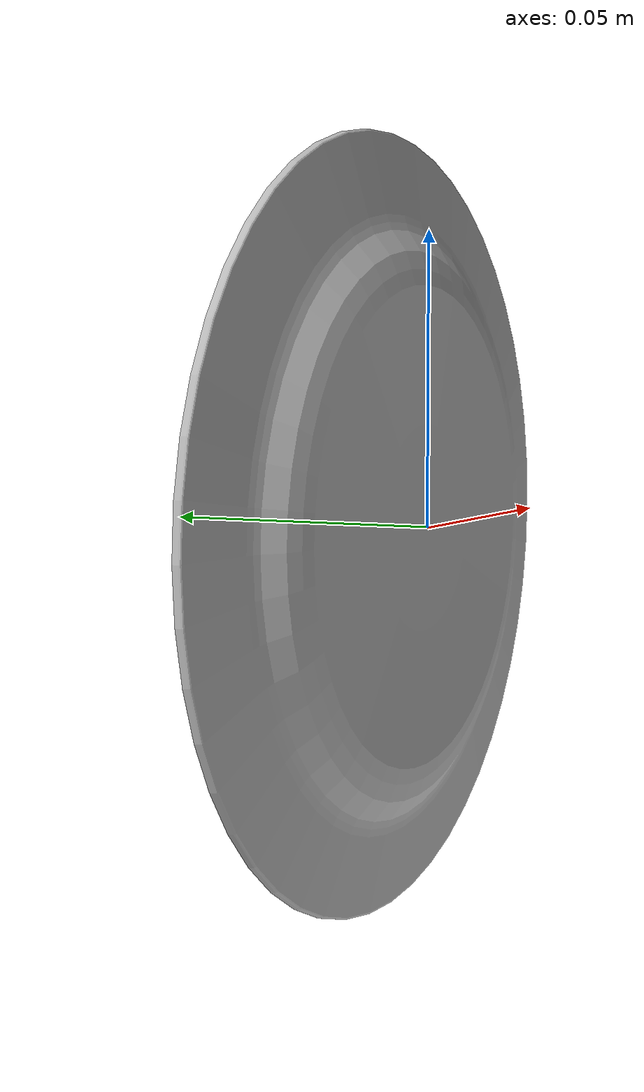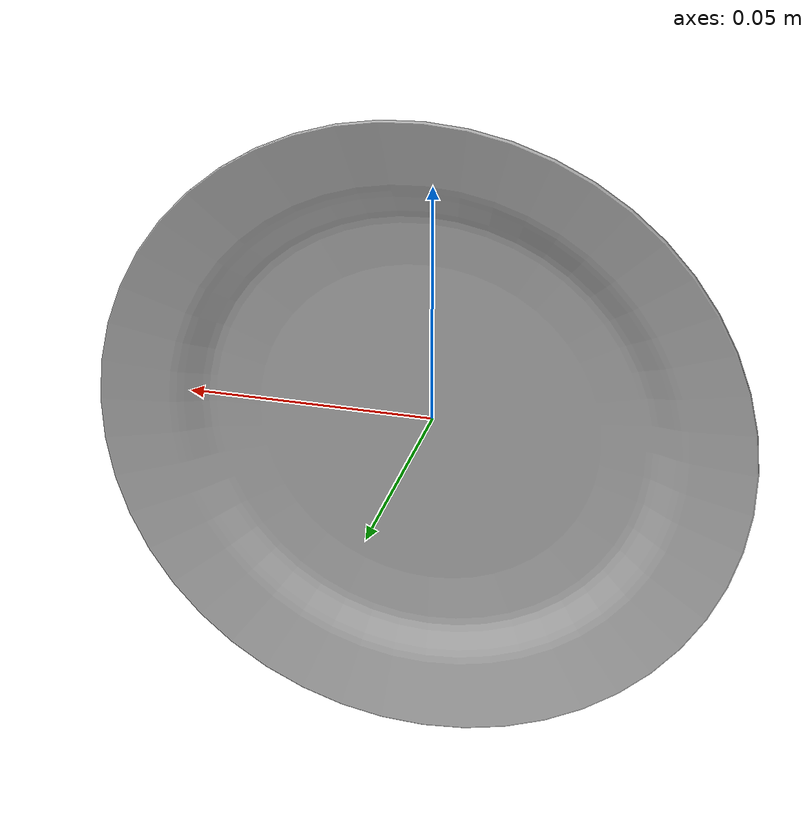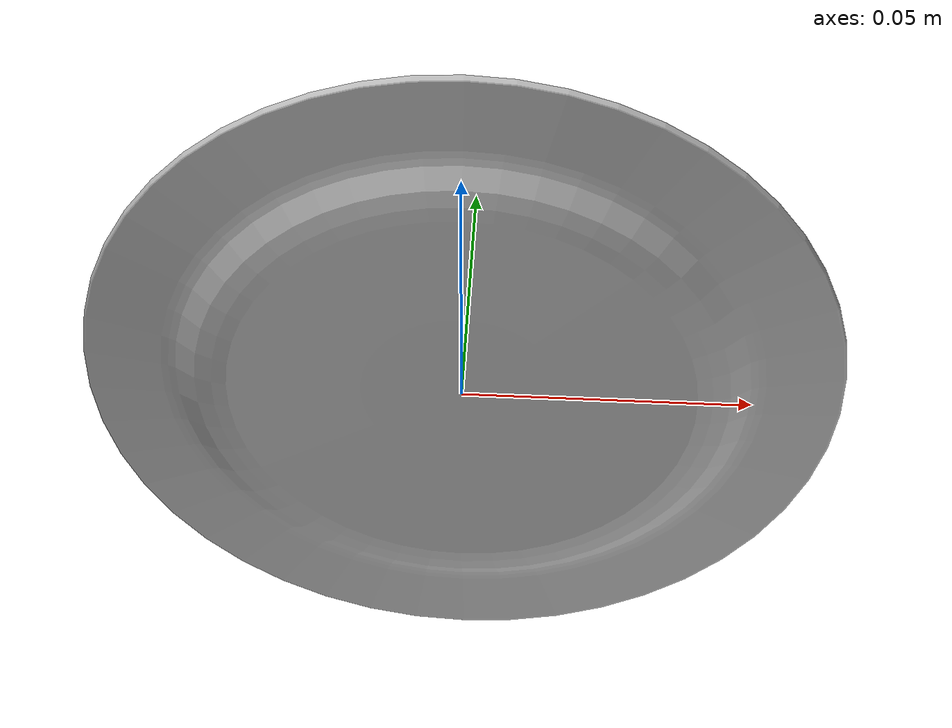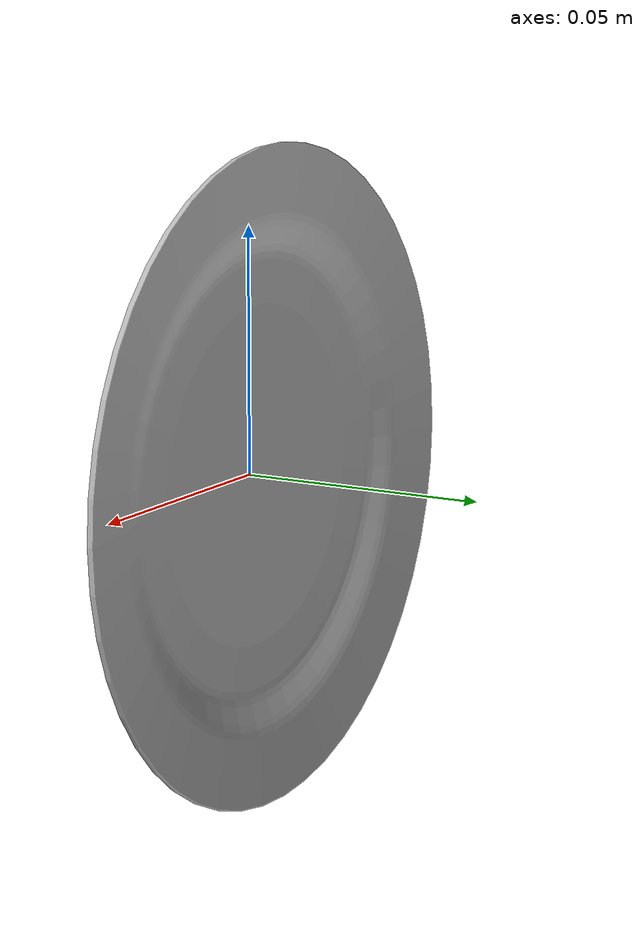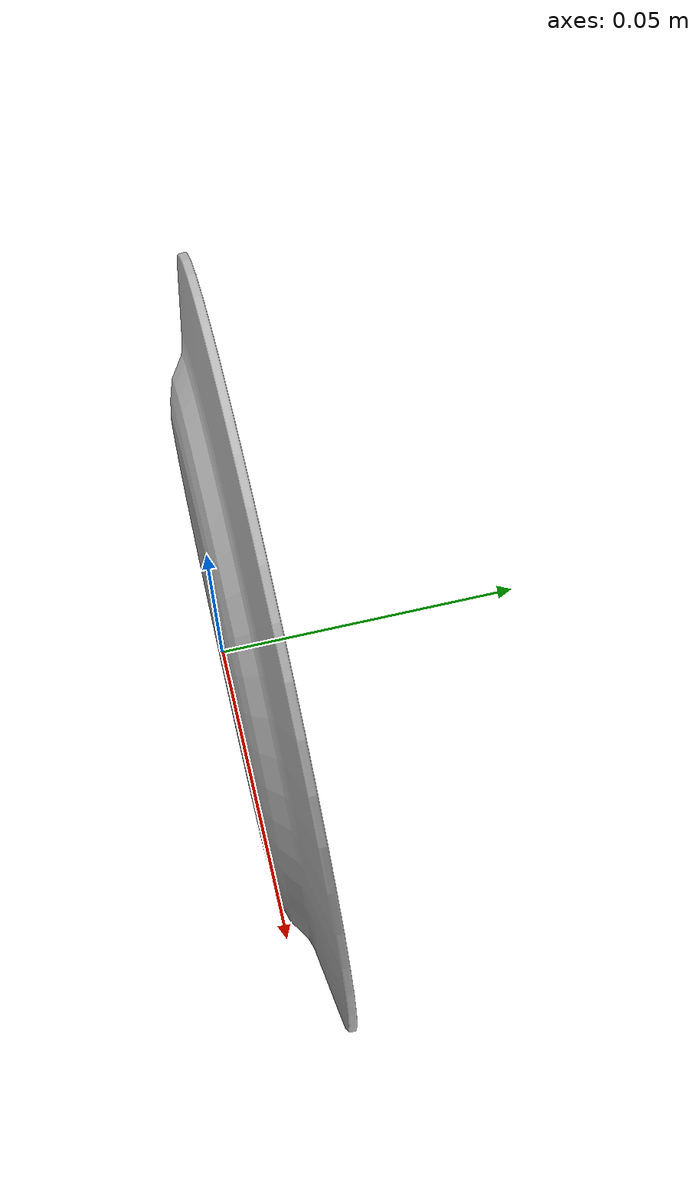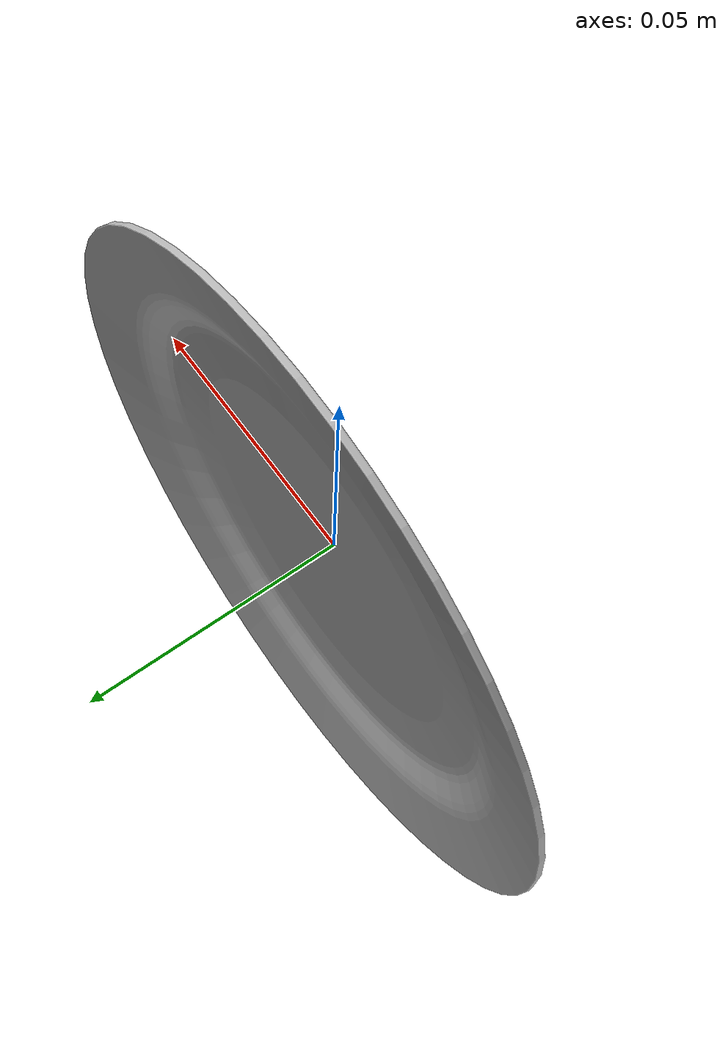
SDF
<?xml version="1.0" ?>
<sdf version="1.4">
    <model name="dish">
      <link name="body">
        <visual name="visual">
          <geometry>
            <mesh><uri>model://dish/dish_s.dae</uri></mesh>
          </geometry>
        </visual>
        <collision name="dish">
          <pose>0 0.01 0 1.5708 0 0</pose>
          <geometry>
            <cylinder>
              <radius>0.07</radius>
              <length>0.02</length>
            </cylinder>
          </geometry>
          <surface>
            <friction>
              <ode>
                <mu>100</mu>
                <mu2>50</mu2>
              </ode>
            </friction>
          </surface>
        </collision>
      </link>
    </model>
</sdf>
